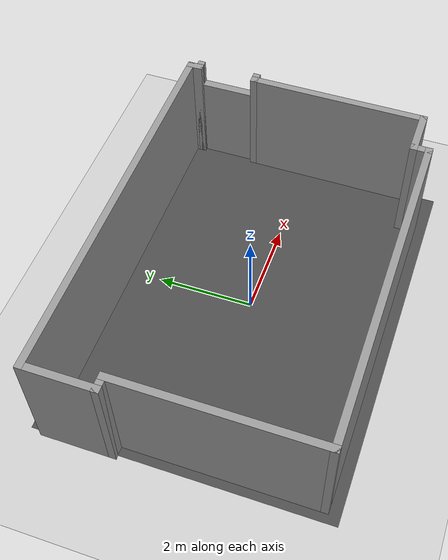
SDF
<sdf version="1.7">
 <world name="default">
  <light name="sun" type="directional">
   <pose>0 0 10 0 -0 0</pose>
   <diffuse>0.8 0.8 0.8 1</diffuse>
   <specular>0.2 0.2 0.2 1</specular>
   <attenuation>
    <range>1000</range>
    <constant>0.9</constant>
    <linear>0.01</linear>
    <quadratic>0.001</quadratic>
   </attenuation>
   <direction>-0.5 0.1 -0.9</direction>
   <spot><inner_angle>0</inner_angle><outer_angle>0</outer_angle><falloff>0</falloff></spot>
  </light>
  <model name="ground_plane">
   <static>1</static>
   <link name="link">
    <collision name="collision">
     <geometry><plane><normal>0 0 1</normal><size>100 100</size></plane></geometry>
     <surface>
      <contact><collide_bitmask>65535</collide_bitmask></contact>
      <friction><ode><mu>100</mu><mu2>50</mu2></ode></friction>
     </surface>
    </collision>
    <visual name="visual">
     <cast_shadows>0</cast_shadows>
     <geometry><plane><normal>0 0 1</normal><size>100 100</size></plane></geometry>
     <material>
      <script><uri>file://media/materials/scripts/gazebo.material</uri><name>Gazebo/Grey</name></script>
     </material>
    </visual>
   </link>
  </model>
  <gravity>0 0 -9.8</gravity>
  <magnetic_field>6e-06 2.3e-05 -4.2e-05</magnetic_field>
  <atmosphere type="adiabatic"/>
  <physics type="ode">
   <max_step_size>0.001</max_step_size>
   <real_time_factor>1</real_time_factor>
   <real_time_update_rate>1000</real_time_update_rate>
  </physics>
  <scene><ambient>0.4 0.4 0.4 1</ambient><background>0.7 0.7 0.7 1</background><shadows>1</shadows></scene>
  <spherical_coordinates>
   <surface_model>EARTH_WGS84</surface_model>
   <latitude_deg>0</latitude_deg>
   <longitude_deg>0</longitude_deg>
   <elevation>0</elevation>
   <heading_deg>0</heading_deg>
  </spherical_coordinates>
  <model name="labroom_wall_door">
   <link name="Door_0">
    <collision name="Door_0_Collision">
     <geometry><box><size>1.25 0.17 2</size></box></geometry>
     <pose>0 0 1 0 -0 0</pose>
    </collision>
    <visual name="Door_0_Visual">
     <pose>0 0 1 0 -0 0</pose>
     <geometry><box><size>1.25 0.17 2</size></box></geometry>
     <material>
      <script><uri>file://media/materials/scripts/gazebo.material</uri><name>Gazebo/Grey</name></script>
     </material>
    </visual>
    <pose>3.98685 1.875 0 0 -0 -1.56516</pose>
   </link>
   <link name="Wall_0">
    <collision name="Wall_0_Collision">
     <geometry><box><size>8.05 0.15 2.5</size></box></geometry>
     <pose>0 0 1.25 0 -0 0</pose>
    </collision>
    <visual name="Wall_0_Visual">
     <pose>0 0 1.25 0 -0 0</pose>
     <geometry><box><size>8.05 0.15 2.5</size></box></geometry>
     <material>
      <script><uri>file://media/materials/scripts/gazebo.material</uri><name>Gazebo/Grey</name></script>
      <ambient>1 1 1 1</ambient>
     </material>
     <meta><layer>0</layer></meta>
    </visual>
    <pose>-0.05 2.7 0 0 -0 0</pose>
   </link>
   <link name="Wall_10">
    <collision name="Wall_10_Collision">
     <geometry><box><size>3.8 0.15 2.5</size></box></geometry>
     <pose>0 0 1.25 0 -0 0</pose>
    </collision>
    <visual name="Wall_10_Visual">
     <pose>0 0 1.25 0 -0 0</pose>
     <geometry><box><size>3.8 0.15 2.5</size></box></geometry>
     <material>
      <script><uri>file://media/materials/scripts/gazebo.material</uri><name>Gazebo/Grey</name></script>
      <ambient>1 1 1 1</ambient>
     </material>
     <meta><layer>0</layer></meta>
    </visual>
    <pose>3.9 -0.575 0 0 -0 -1.5708</pose>
   </link>
   <link name="Wall_12">
    <collision name="Wall_12_Collision">
     <geometry><box><size>1 0.15 2.5</size></box></geometry>
     <pose>0 0 1.25 0 -0 0</pose>
    </collision>
    <visual name="Wall_12_Visual">
     <pose>0 0 1.25 0 -0 0</pose>
     <geometry><box><size>1 0.15 2.5</size></box></geometry>
     <material>
      <script><uri>file://media/materials/scripts/gazebo.material</uri><name>Gazebo/Grey</name></script>
      <ambient>1 1 1 1</ambient>
     </material>
     <meta><layer>0</layer></meta>
    </visual>
    <pose>3.475 -2.4 0 0 -0 3.14159</pose>
   </link>
   <link name="Wall_14">
    <collision name="Wall_14_Collision">
     <geometry><box><size>0.45 0.15 2.5</size></box></geometry>
     <pose>0 0 1.25 0 -0 0</pose>
    </collision>
    <visual name="Wall_14_Visual">
     <pose>0 0 1.25 0 -0 0</pose>
     <geometry><box><size>0.45 0.15 2.5</size></box></geometry>
     <material>
      <script><uri>file://media/materials/scripts/gazebo.material</uri><name>Gazebo/Grey</name></script>
      <ambient>1 1 1 1</ambient>
     </material>
     <meta><layer>0</layer></meta>
    </visual>
    <pose>3.05 -2.55 0 0 -0 -1.5708</pose>
   </link>
   <link name="Wall_16">
    <collision name="Wall_16_Collision">
     <geometry><box><size>6.95 0.15 2.5</size></box></geometry>
     <pose>0 0 1.25 0 -0 0</pose>
    </collision>
    <visual name="Wall_16_Visual">
     <pose>0 0 1.25 0 -0 0</pose>
     <geometry><box><size>6.95 0.15 2.5</size></box></geometry>
     <material>
      <script><uri>file://media/materials/scripts/gazebo.material</uri><name>Gazebo/Grey</name></script>
      <ambient>1 1 1 1</ambient>
     </material>
     <meta><layer>0</layer></meta>
    </visual>
    <pose>-0.35 -2.7 0 0 -0 3.14159</pose>
   </link>
   <link name="Wall_18">
    <collision name="Wall_18_Collision">
     <geometry><box><size>4.15 0.15 2.5</size></box></geometry>
     <pose>0 0 1.25 0 -0 0</pose>
    </collision>
    <visual name="Wall_18_Visual">
     <pose>0 0 1.25 0 -0 0</pose>
     <geometry><box><size>4.15 0.15 2.5</size></box></geometry>
     <material>
      <script><uri>file://media/materials/scripts/gazebo.material</uri><name>Gazebo/Grey</name></script>
      <ambient>1 1 1 1</ambient>
     </material>
     <meta><layer>0</layer></meta>
    </visual>
    <pose>-3.75 -0.7 0 0 -0 1.5708</pose>
   </link>
   <link name="Wall_2">
    <collision name="Wall_2_Collision">
     <geometry><box><size>0.35 0.15 2.5</size></box></geometry>
     <pose>0 0 1.25 0 -0 0</pose>
    </collision>
    <visual name="Wall_2_Visual">
     <pose>0 0 1.25 0 -0 0</pose>
     <geometry><box><size>0.35 0.15 2.5</size></box></geometry>
     <material>
      <script><uri>file://media/materials/scripts/gazebo.material</uri><name>Gazebo/Grey</name></script>
      <ambient>1 1 1 1</ambient>
     </material>
     <meta><layer>0</layer></meta>
    </visual>
    <pose>3.9 2.6 0 0 -0 -1.5708</pose>
   </link>
   <link name="Wall_20">
    <collision name="Wall_20_Collision">
     <geometry><box><size>0.4 0.15 2.5</size></box></geometry>
     <pose>0 0 1.25 0 -0 0</pose>
    </collision>
    <visual name="Wall_20_Visual">
     <pose>0 0 1.25 0 -0 0</pose>
     <geometry><box><size>0.4 0.15 2.5</size></box></geometry>
     <material>
      <script><uri>file://media/materials/scripts/gazebo.material</uri><name>Gazebo/Grey</name></script>
      <ambient>1 1 1 1</ambient>
     </material>
     <meta><layer>0</layer></meta>
    </visual>
    <pose>-3.875 1.3 0 0 -0 3.14159</pose>
   </link>
   <link name="Wall_22">
    <collision name="Wall_22_Collision">
     <geometry><box><size>1.55 0.15 2.5</size></box></geometry>
     <pose>0 0 1.25 0 -0 0</pose>
    </collision>
    <visual name="Wall_22_Visual">
     <pose>0 0 1.25 0 -0 0</pose>
     <geometry><box><size>1.55 0.15 2.5</size></box></geometry>
     <material>
      <script><uri>file://media/materials/scripts/gazebo.material</uri><name>Gazebo/Grey</name></script>
      <ambient>1 1 1 1</ambient>
     </material>
     <meta><layer>0</layer></meta>
    </visual>
    <pose>-4 2 0 0 -0 1.5708</pose>
   </link>
   <link name="Wall_4">
    <collision name="Wall_4_Collision">
     <geometry><box><size>0.25 0.15 2.5</size></box></geometry>
     <pose>0 0 1.25 0 -0 0</pose>
    </collision>
    <visual name="Wall_4_Visual">
     <pose>0 0 1.25 0 -0 0</pose>
     <geometry><box><size>0.25 0.15 2.5</size></box></geometry>
     <material>
      <script><uri>file://media/materials/scripts/gazebo.material</uri><name>Gazebo/Grey</name></script>
      <ambient>1 1 1 1</ambient>
     </material>
     <meta><layer>0</layer></meta>
    </visual>
    <pose>3.95 2.5 0 0 -0 0</pose>
   </link>
   <link name="Wall_8">
    <collision name="Wall_8_Collision">
     <geometry><box><size>0.25 0.15 2.5</size></box></geometry>
     <pose>0 0 1.25 0 -0 0</pose>
    </collision>
    <visual name="Wall_8_Visual">
     <pose>0 0 1.25 0 -0 0</pose>
     <geometry><box><size>0.25 0.15 2.5</size></box></geometry>
     <material>
      <script><uri>file://media/materials/scripts/gazebo.material</uri><name>Gazebo/Grey</name></script>
      <ambient>1 1 1 1</ambient>
     </material>
     <meta><layer>0</layer></meta>
    </visual>
    <pose>3.95 1.25 0 0 -0 3.14159</pose>
   </link>
   <static>1</static>
  </model>
  <model name="asphalt_plane">
   <link name="link">
    <inertial>
     <mass>1</mass>
     <inertia><ixx>1</ixx><ixy>0</ixy><ixz>0</ixz><iyy>1</iyy><iyz>0</iyz><izz>1</izz></inertia>
    </inertial>
    <visual name="visual">
     <cast_shadows>0</cast_shadows>
     <geometry><box><size>8 6 1e-06</size></box></geometry>
     <material>
      <script>
       <uri>model://asphalt_plane/materials/scripts</uri>
       <uri>model://asphalt_plane/materials/textures</uri>
       <name>vrc/asphalt</name>
      </script>
      <shader type="pixel"><normal_map>__default__</normal_map></shader>
      <ambient>0.5 0.5 0.5 1</ambient>
      <diffuse>0.5 0.5 0.5 1</diffuse>
      <specular>0.2 0.2 0.2 1</specular>
      <emissive>0 0 0 1</emissive>
     </material>
    </visual>
    <collision name="collision">
     <geometry><box><size>8 6 1e-06</size></box></geometry>
     <surface>
      <friction>
       <ode><mu>1</mu><mu2>1</mu2><fdir1>0 0 0</fdir1><slip1>0</slip1><slip2>0</slip2></ode>
       <torsional>
        <coefficient>1</coefficient>
        <patch_radius>0</patch_radius>
        <surface_radius>0</surface_radius>
        <use_patch_radius>1</use_patch_radius>
        <ode><slip>0</slip></ode>
       </torsional>
      </friction>
      <bounce><restitution_coefficient>0</restitution_coefficient><threshold>1e+06</threshold></bounce>
      <contact>
       <collide_without_contact>0</collide_without_contact>
       <collide_without_contact_bitmask>1</collide_without_contact_bitmask>
       <collide_bitmask>1</collide_bitmask>
       <ode>
        <soft_cfm>0</soft_cfm>
        <soft_erp>0.2</soft_erp>
        <kp>1e+13</kp>
        <kd>1</kd>
        <max_vel>0.01</max_vel>
        <min_depth>0</min_depth>
       </ode>
       <bullet>
        <split_impulse>1</split_impulse>
        <split_impulse_penetration_threshold>-0.01</split_impulse_penetration_threshold>
        <soft_cfm>0</soft_cfm>
        <soft_erp>0.2</soft_erp>
        <kp>1e+13</kp>
        <kd>1</kd>
       </bullet>
      </contact>
     </surface>
    </collision>
   </link>
   <static>1</static>
   <pose>0 0 0.023 0 -0 0</pose>
  </model>
 </world>
</sdf>
